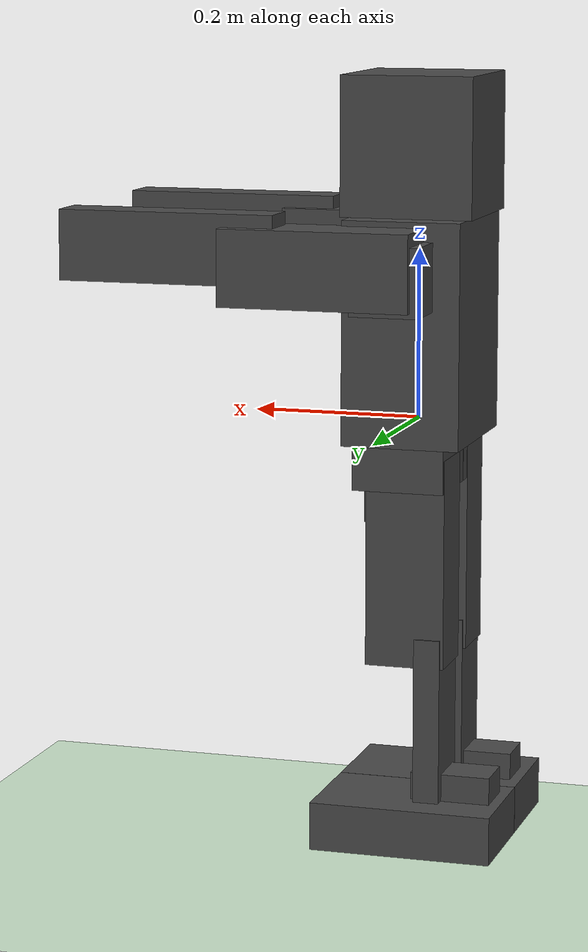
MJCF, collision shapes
<mujoco model="nugus scene">

  <include file="nugus.xml"/>

  <statistic center="0 0 0.55" extent="1.1"/>

  <visual>
    <headlight diffuse="0.6 0.6 0.6" ambient="0.3 0.3 0.3" specular="0 0 0"/>
    <rgba haze="0.871 0.616 0.4 0.5"/>
    <global azimuth="-130" elevation="-20"/>
  </visual>

   <asset>
       <texture builtin="gradient" height="100" rgb1="0.9 0.9 0.9" rgb2="0.549 0.251 0.0" type="skybox" width="100"/>
       <texture name="texplane" type="2d" builtin="checker" rgb1="0.5 0.5 0.5" rgb2="0.55 0.55 0.55" width="100" height="100"/>
       <material name="MatPlane" reflectance="0.0" texture="texplane" texrepeat="1 1" texuniform="true"/>
   </asset>

    <worldbody>
        <geom name="floor" friction="1 .1 .1" pos="0 0 -0.55" size="0 0 0.125" type="plane" material="MatPlane" condim="3" conaffinity="1" contype="1" group="2" rgba="0.8 0.9 0.8 1"/>
        <light cutoff="1000" diffuse="1.5 1.5 1.5" dir="-0 0 -1.3" directional="true" exponent="10" pos="0 0 10.3" specular=".1 .1 .1" castshadow="false"/>
    </worldbody>

</mujoco>

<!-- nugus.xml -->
<mujoco model="nugus">
<compiler angle="radian" meshdir=""/>

  <option iterations="3" ls_iterations="5" timestep=".002">
    <flag eulerdamp="disable"/>
  </option>

  <asset>
    <mesh name="torso_visual" file="torso_visual.stl"/>
    <mesh name="left_hip_yaw_visual" file="left_hip_yaw_visual.stl"/>
    <mesh name="left_hip_roll_visual" file="left_hip_roll_visual.stl"/>
    <mesh name="left_upper_leg_visual" file="left_upper_leg_visual.stl"/>
    <mesh name="left_lower_leg_visual" file="left_lower_leg_visual.stl"/>
    <mesh name="left_ankle_visual" file="left_ankle_visual.stl"/>
    <mesh name="left_foot_visual" file="left_foot_visual.stl"/>
    <mesh name="left_foot_base_visual" file="left_foot_base_visual.stl"/>
    <mesh name="right_hip_yaw_visual" file="right_hip_yaw_visual.stl"/>
    <mesh name="right_hip_roll_visual" file="right_hip_roll_visual.stl"/>
    <mesh name="right_upper_leg_visual" file="right_upper_leg_visual.stl"/>
    <mesh name="right_lower_leg_visual" file="right_lower_leg_visual.stl"/>
    <mesh name="right_ankle_visual" file="right_ankle_visual.stl"/>
    <mesh name="right_foot_visual" file="right_foot_visual.stl"/>
    <mesh name="right_foot_base_visual" file="right_foot_base_visual.stl"/>
    <mesh name="neck_visual" file="neck_visual.stl"/>
    <mesh name="head_visual" file="head_visual.stl"/>
    <mesh name="right_camera_visual" file="right_camera_visual.stl"/>
    <mesh name="left_shoulder_visual" file="left_shoulder_visual.stl"/>
    <mesh name="left_upper_arm_visual" file="left_upper_arm_visual.stl"/>
    <mesh name="left_lower_arm_visual" file="left_lower_arm_visual.stl"/>
    <mesh name="right_shoulder_visual" file="right_shoulder_visual.stl"/>
    <mesh name="right_upper_arm_visual" file="right_upper_arm_visual.stl"/>
    <mesh name="right_lower_arm_visual" file="right_lower_arm_visual.stl"/>
  </asset>

  <default>
    <joint damping="1.084" armature="0.045" frictionloss="0.03"/>
    <position kp="40.1" ctrlrange="-3.141592 3.141592" forcerange="-100 100"/>
    <geom contype="1" conaffinity="2" condim="3" solref="0.005 1"/>
    <site group="5" type="sphere"/>
    <default class="collision">
      <geom group="3"/>
      <default class="foot">
        <geom mass="0" type="box" contype="0" conaffinity="1" friction="1.0"/>
      </default>
    </default>
    <default class="visual">
      <geom contype="0" conaffinity="0" group="1" rgba="0.286275 0.286275 0.286275 1"/>
    </default>
    <default class="MX106">
      <joint armature="0.0266" damping="1.6548" frictionloss="0.10352"/>
      <position kp="56.052" forcerange="-11.086 11.086"/>
    </default>
    <default class="MX64">
      <joint armature="0.01195" damping="0.6782" frictionloss="0.09039"/>
      <position kp="31.1558" forcerange="-6.1621 6.1621"/>
    </default>
    <default class="XH540-W270">
      <joint armature="0.0266" damping="1.6548" frictionloss="0.10352"/>
      <position kp="56.052" forcerange="-11.086 11.086"/>
    </default>
  </default>

  <actuator>
    <position joint="left_hip_yaw" name="left_hip_yaw"/>
    <position joint="left_hip_roll" name="left_hip_roll"/>
    <position joint="left_hip_pitch" name="left_hip_pitch"/>
    <position joint="left_knee_pitch" name="left_knee_pitch"/>
    <position joint="left_ankle_pitch" name="left_ankle_pitch"/>
    <position joint="left_ankle_roll" name="left_ankle_roll"/>

    <position joint="right_hip_yaw" name="right_hip_yaw"/>
    <position joint="right_hip_roll" name="right_hip_roll"/>
    <position joint="right_hip_pitch" name="right_hip_pitch"/>
    <position joint="right_knee_pitch" name="right_knee_pitch"/>
    <position joint="right_ankle_pitch" name="right_ankle_pitch"/>
    <position joint="right_ankle_roll" name="right_ankle_roll"/>

    <position joint="neck_yaw" name="neck_yaw"/>
    <position joint="head_pitch" name="head_pitch"/>

    <position joint="left_shoulder_pitch" name="left_shoulder_pitch"/>
    <position joint="left_shoulder_roll" name="left_shoulder_roll"/>
    <position joint="left_elbow_pitch" name="left_elbow_pitch"/>
    <position joint="right_shoulder_pitch" name="right_shoulder_pitch"/>
    <position joint="right_shoulder_roll" name="right_shoulder_roll"/>
    <position joint="right_elbow_pitch" name="right_elbow_pitch"/>
  </actuator>

  <sensor>
    <framepos objtype="site" objname="imu" name="position"/>
    <gyro site="imu" name="gyro"/>
    <velocimeter site="imu" name="local_linvel"/>
    <accelerometer site="imu" name="accelerometer"/>
    <framezaxis objtype="site" objname="imu" name="upvector"/>
    <framexaxis objtype="site" objname="imu" name="forwardvector"/>
    <framelinvel objtype="site" objname="imu" name="global_linvel"/>
    <frameangvel objtype="site" objname="imu" name="global_angvel"/>
    <framequat objtype="site" objname="imu" name="orientation"/>

    <!-- Feet velocity sensors (global). -->
    <framelinvel objtype="site" objname="left_foot" name="left_foot_global_linvel"/>
    <framelinvel objtype="site" objname="right_foot" name="right_foot_global_linvel"/>

    <!-- Foot force sensors. -->
    <force site="left_foot" name="left_foot_force"/>
    <force site="right_foot" name="right_foot_force"/>

    <!-- Joint position sensors -->
    <jointpos joint="right_shoulder_pitch" name="right_shoulder_pitch_pos"/>
    <jointpos joint="left_shoulder_pitch" name="left_shoulder_pitch_pos"/>
    <jointpos joint="right_shoulder_roll" name="right_shoulder_roll_pos"/>
    <jointpos joint="left_shoulder_roll" name="left_shoulder_roll_pos"/>
    <jointpos joint="right_elbow_pitch" name="right_elbow_pitch_pos"/>
    <jointpos joint="left_elbow_pitch" name="left_elbow_pitch_pos"/>
    <jointpos joint="right_hip_yaw" name="right_hip_yaw_pos"/>
    <jointpos joint="left_hip_yaw" name="left_hip_yaw_pos"/>
    <jointpos joint="right_hip_roll" name="right_hip_roll_pos"/>
    <jointpos joint="left_hip_roll" name="left_hip_roll_pos"/>
    <jointpos joint="right_hip_pitch" name="right_hip_pitch_pos"/>
    <jointpos joint="left_hip_pitch" name="left_hip_pitch_pos"/>
    <jointpos joint="right_knee_pitch" name="right_knee_pitch_pos"/>
    <jointpos joint="left_knee_pitch" name="left_knee_pitch_pos"/>
    <jointpos joint="right_ankle_pitch" name="right_ankle_pitch_pos"/>
    <jointpos joint="left_ankle_pitch" name="left_ankle_pitch_pos"/>
    <jointpos joint="right_ankle_roll" name="right_ankle_roll_pos"/>
    <jointpos joint="left_ankle_roll" name="left_ankle_roll_pos"/>
    <jointpos joint="neck_yaw" name="neck_yaw_pos"/>
    <jointpos joint="head_pitch" name="head_pitch_pos"/>
  </sensor>

  <worldbody>
      <body name="torso">
      <inertial pos="-0.000971341 -7.63301e-05 0.0898493" quat="0.998034 0.00199235 0.0599357 0.0182343" mass="1.83264" diaginertia="0.0156368 0.0131516 0.00578565"/>
      <joint name="torso_free_joint" type="free"/>
      <site name='imu' size='0.01' pos='0 0 0'/>
      <camera name="track" pos="0.805 -1.105 0.2" xyaxes="0.814 0.580 0.000 -0.140 0.196 0.971" mode="trackcom"/>
      <geom type="mesh" contype="0" conaffinity="0" group="1" density="0" rgba="0.286275 0.286275 0.286275 1" mesh="torso_visual"/>
      <geom size="0.0697546 0.0949914 0.130902" pos="-0.00200103 -1.04979e-05 0.108568" type="box" rgba="0.286275 0.286275 0.286275 0"/>
      <body name="left_hip_yaw" pos="0 0.055 0" quat="1 0 0 0">
        <inertial pos="-0.0021828 -0.00894798 -0.0247563" quat="0.706738 0.705731 0.0325035 -0.0375176" mass="0.0594023" diaginertia="0.00011878 0.000103492 5.24089e-05"/>
        <joint name="left_hip_yaw" pos="0 0 0" axis="0 0 1" limited="true" range="-3.14159 3.14159" class="MX106"/>
        <geom type="mesh" contype="0" conaffinity="0" group="1" density="0" rgba="0.286275 0.286275 0.286275 1" mesh="left_hip_yaw_visual"/>
        <geom size="0.05425 0.0470128 0.03675" pos="0 -0.00723724 -0.03675" type="box" rgba="0.286275 0.286275 0.286275 0"/>
        <body name="left_hip_roll" pos="0.0221332 0 -0.0545" quat="0.707105 0 0.707108 0">
          <inertial pos="0.015733 -0.000686158 -0.0217073" quat="0.70707 0.00800622 -0.00800603 0.707053" mass="0.395953" diaginertia="0.000375935 0.000314298 0.000127658"/>
          <joint name="left_hip_roll" pos="0 0 0" axis="0 0 1" limited="true" range="-3.14159 3.14159"/>
          <geom type="mesh" contype="0" conaffinity="0" group="1" density="0" rgba="0.286275 0.286275 0.286275 1" mesh="left_hip_roll_visual"/>
          <geom size="0.0362265 0.02765 0.046925" pos="0.0211382 0.00135 -0.026825" type="box" rgba="0.286275 0.286275 0.286275 0"/>
          <body name="left_upper_leg" pos="0 0 0" quat="0.707105 -0.707108 0 0">
            <inertial pos="0.144296 0.0401097 0.000258488" quat="0.48018 0.474915 0.52246 0.520498" mass="0.313357" diaginertia="0.00167304 0.00160068 0.000213115"/>
            <joint name="left_hip_pitch" pos="0 0 0" axis="0 0 1" limited="true" range="-3.14159 3.14159"/>
            <geom type="mesh" contype="0" conaffinity="0" group="1" density="0" rgba="0.286275 0.286275 0.286275 1" mesh="left_upper_leg_visual"/>
            <geom size="0.123135 0.0467353 0.0365" pos="0.103064 0.0303674 0" type="box" rgba="0.286275 0.286275 0.286275 0"/>
            <body name="left_lower_leg" pos="0.206046 0.0569501 0" quat="1 0 0 0">
              <inertial pos="0.1001 0.00388186 -1.61259e-08" quat="0.500001 0.500001 0.499999 0.499999" mass="0.0893011" diaginertia="0.000408951 0.0003363 9.01254e-05"/>
              <joint name="left_knee_pitch" pos="0 0 0" axis="0 0 1" limited="true" range="-3.14159 3.14159" class="XH540-W270"/>
              <geom type="mesh" contype="0" conaffinity="0" group="1" density="0" rgba="0.286275 0.286275 0.286275 1" mesh="left_lower_leg_visual"/>
              <geom size="0.114601 0.0155 0.039" pos="0.100101 0.001 0" type="box" rgba="0.286275 0.286275 0.286275 0"/>
              <body name="left_ankle" pos="0.200203 0 0" quat="1 0 0 0">
                <inertial pos="-0.015733 0.0219762 0.000512596" quat="0.508721 0.491668 -0.491137 0.508184" mass="0.329993" diaginertia="0.000265803 0.000265762 0.000157721"/>
                <joint name="left_ankle_pitch" pos="0 0 0" axis="0 0 1" limited="true" range="-3.14159 3.14159"/>
                <geom type="mesh" contype="0" conaffinity="0" group="1" density="0" rgba="0.286275 0.286275 0.286275 1" mesh="left_ankle_visual"/>
                <geom size="0.0331382 0.047194 0.02765" pos="-0.01805 0.027094 -0.00166756" type="box" rgba="0.286275 0.286275 0.286275 0"/>
                <body name="left_foot" pos="0 0 0" quat="0.707105 0.707108 0 0">
                  <inertial pos="0.0248226 0.00798542 0.033284" quat="0.99979 -0.0089131 -9.26048e-05 -0.0184639" mass="0.245581" diaginertia="0.00134758 0.00108371 0.00033179"/>
                  <joint name="left_ankle_roll" pos="0 0 0" axis="0 0 1" limited="true" range="-3.14159 3.14159"/>
                  <geom type="mesh" contype="0" conaffinity="0" group="1" density="0" rgba="0.286275 0.286275 0.286275 1" mesh="left_foot_visual"/>
                  <geom size="0.0284933 0.0657897 0.107911" pos="0.00950672 0.0109447 0.0211599" type="box" rgba="0.286275 0.286275 0.286275 0"/>
                  <geom pos="0.038 0 0" quat="0.707105 0 -0.707108 0" type="mesh" contype="0" conaffinity="0" group="1" density="0" rgba="0.615686 0.811765 0.929412 1" mesh="left_foot_base_visual"/>
                  <geom name="l_foot1" class="foot" pos="0.02 0.01 0.02" size="0.02 0.06 0.105"/>
                  <site name="left_foot" rgba="1 0 0 1" pos="0.02 0 0"/>
                </body>
              </body>
            </body>
          </body>
        </body>
      </body>
      <body name="right_hip_yaw" pos="0 -0.055 0" quat="1 0 0 0">
        <inertial pos="-0.00218277 0.0089479 -0.0247564" quat="0.705733 0.706736 0.0375273 -0.0325114" mass="0.0594022" diaginertia="0.000118779 0.000103492 5.24082e-05"/>
        <joint name="right_hip_yaw" pos="0 0 0" axis="0 0 1" limited="true" range="-3.14159 3.14159" class="MX106"/>
        <geom type="mesh" contype="0" conaffinity="0" group="1" density="0" rgba="0.286275 0.286275 0.286275 1" mesh="right_hip_yaw_visual"/>
        <geom size="0.05425 0.0470128 0.03675" pos="0 0.00723724 -0.03675" type="box" rgba="0.286275 0.286275 0.286275 0"/>
        <body name="right_hip_roll" pos="0.0221332 0 -0.0545" quat="0.707105 0 0.707108 0">
          <inertial pos="0.015733 -0.000232251 -0.0218286" quat="0.707049 0.00279235 -0.00279276 0.707153" mass="0.395953" diaginertia="0.000378041 0.000316367 0.000127621"/>
          <joint name="right_hip_roll" pos="0 0 0" axis="0 0 1" limited="true" range="-3.14159 3.14159"/>
          <geom type="mesh" contype="0" conaffinity="0" group="1" density="0" rgba="0.286275 0.286275 0.286275 1" mesh="right_hip_roll_visual"/>
          <geom size="0.0331382 0.02765 0.04705" pos="0.01805 -0.00315 -0.02695" type="box" rgba="0.286275 0.286275 0.286275 0"/>
          <body name="right_upper_leg" pos="0 0 0" quat="0.707105 -0.707108 0 0">
            <inertial pos="0.144343 0.0400917 -0.000278506" quat="0.47021 0.473824 0.526501 0.526488" mass="0.313809" diaginertia="0.00167983 0.00160132 0.000207139"/>
            <joint name="right_hip_pitch" pos="0 0 0" axis="0 0 1" limited="true" range="-3.14159 3.14159"/>
            <geom type="mesh" contype="0" conaffinity="0" group="1" density="0" rgba="0.286275 0.286275 0.286275 1" mesh="right_upper_leg_visual"/>
            <geom size="0.123135 0.0467353 0.0365" pos="0.103064 0.0303674 -1.86265e-09" type="box" rgba="0.286275 0.286275 0.286275 0"/>
            <body name="right_lower_leg" pos="0.206046 0.0569501 0" quat="1 0 0 0">
              <inertial pos="0.100103 0.00388186 1.61259e-08" quat="0.499999 0.499999 0.500001 0.500001" mass="0.0893011" diaginertia="0.000408951 0.0003363 9.01254e-05"/>
              <joint name="right_knee_pitch" pos="0 0 0" axis="0 0 1" limited="true" range="-3.14159 3.14159" class="XH540-W270"/>
              <geom type="mesh" contype="0" conaffinity="0" group="1" density="0" rgba="0.286275 0.286275 0.286275 1" mesh="right_lower_leg_visual"/>
              <geom size="0.114601 0.0155 0.039" pos="0.100101 0.001 0" type="box" rgba="0.286275 0.286275 0.286275 0"/>
              <body name="right_ankle" pos="0.200203 0 0" quat="1 0 0 0">
                <inertial pos="-0.015733 0.0218226 0.000508968" quat="0.51022 0.492773 -0.489643 0.507051" mass="0.329993" diaginertia="0.00026369 0.000263648 0.000157719"/>
                <joint name="right_ankle_pitch" pos="0 0 0" axis="0 0 1" limited="false"/>
                <geom type="mesh" contype="0" conaffinity="0" group="1" density="0" rgba="0.286275 0.286275 0.286275 1" mesh="right_ankle_visual"/>
                <geom size="0.0328441 0.047044 0.02765" pos="-0.0177559 0.026944 -0.00166756" type="box" rgba="0.286275 0.286275 0.286275 0"/>
                <body name="right_foot" pos="0 0 0" quat="0.707105 0.707108 0 0">
                  <inertial pos="0.024823 -0.00798676 0.0332808" quat="0.99979 0.0089119 -9.00788e-05 0.0184638" mass="0.245567" diaginertia="0.00134748 0.00108364 0.000331758"/>
                  <joint name="right_ankle_roll" pos="0 0 0" axis="0 0 1" limited="true" range="-3.14159 3.14159"/>
                  <geom type="mesh" contype="0" conaffinity="0" group="1" density="0" rgba="0.286275 0.286275 0.286275 1" mesh="right_foot_visual"/>
                  <geom size="0.0284933 0.0657897 0.107911" pos="0.00950672 -0.0109447 0.0211599" type="box" rgba="0.286275 0.286275 0.286275 0"/>
                  <geom pos="0.038 0 0" quat="0.707105 0 -0.707108 0" type="mesh" contype="0" conaffinity="0" group="1" density="0" rgba="0.615686 0.811765 0.929412 1" mesh="right_foot_base_visual"/>
                  <geom name="r_foot1" class="foot" pos="0.02 -0.01 0.02" size="0.02 0.06 0.105"/>
                  <site name="right_foot" rgba="1 0 0 1" pos="0.02 0 0"/>
                </body>
              </body>
            </body>
          </body>
        </body>
      </body>
      <body name="neck" pos="-0.008 0 0.20825" quat="1.32679e-06 0 0 -1">
        <inertial pos="-0.000244686 -0.000118134 0.0329091" quat="0.998443 0.0557737 1.07166e-07 -1.91845e-06" mass="0.165011" diaginertia="6.78379e-05 5.68579e-05 3.82813e-05"/>
        <joint name="neck_yaw" pos="-0.008 0 0.20825" axis="0 0 1" limited="true" range="-3.14159 3.14159" class="MX64"/>
        <geom type="mesh" contype="0" conaffinity="0" group="1" density="0" rgba="0.286275 0.286275 0.286275 1" mesh="neck_visual"/>
        <geom size="0.0201 0.025 0.0314176" pos="-0.000244711 -0.00275529 0.0306824" type="box" rgba="0.286275 0.286275 0.286275 0"/>
        <body name="head" pos="-0.00024471 -0.000255294 0.0481" quat="0.499998 0.5 0.5 -0.500002">
          <inertial pos="-0.0665563 -0.0103216 -0.000100617" quat="0.999969 -0.000336797 -0.00449046 0.00648687" mass="0.473503" diaginertia="0.00196866 0.00145321 0.00107438"/>
          <joint name="head_pitch" pos="0 0 0" axis="0 0 1" limited="true" range="-3.14159 3.14159" class="MX64"/>
          <geom type="mesh" contype="0" conaffinity="0" group="1" density="0" rgba="0.286275 0.286275 0.286275 1" mesh="head_visual"/>
          <geom size="0.0811188 0.0778217 0.0788984" pos="-0.0659288 -0.00433207 -0.000205018" type="box" rgba="0.286275 0.286275 0.286275 0"/>
          <geom pos="-0.0648803 -0.0699522 -0.034205" quat="0.508649 0.508651 -0.491199 -0.491197" type="mesh" contype="0" conaffinity="0" group="1" density="0" rgba="0.615686 0.811765 0.929412 1" mesh="right_camera_visual"/>
          <geom size="5e-06 5.08174e-06 5e-06" pos="-0.0648853 -0.0699524 -0.034205" quat="0.508649 0.508651 -0.491199 -0.491197" type="box" rgba="0.615686 0.811765 0.929412 1"/>
          <camera name="egocentric" pos="0.01425 -0.019 0.04975" fovy="43.3" mode="fixed" euler="0.0 -1.570796 -1.570796"/>
        </body>
      </body>
      <body name="left_shoulder" pos="0 0.077 0.17725" quat="0.499998 -0.5 0.5 0.500002">
        <inertial pos="-3.61374e-05 -0.00254925 0.0287427" quat="0.618495 0.346197 0.615355 0.344891" mass="0.0845502" diaginertia="9.98768e-05 9.09162e-05 7.30289e-05"/>
        <joint name="left_shoulder_pitch" pos="0 0.0106 0.1616" axis="0 0 1" limited="true" range="-3.14159 3.14159" class="MX64"/>
        <geom type="mesh" contype="0" conaffinity="0" group="1" density="0" rgba="0.286275 0.286275 0.286275 1" mesh="left_shoulder_visual"/>
        <geom size="0.04 0.040721 0.0396866" pos="0 -0.000721047 0.0396866" type="box" rgba="0.286275 0.286275 0.286275 0"/>
        <body name="left_upper_arm" pos="0 -0.0100012 0.0479124" quat="0.499998 0.5 -0.500002 -0.5">
          <inertial pos="0.045902 0.000372495 9.27204e-06" quat="0.346504 0.576301 -0.375287 0.637943" mass="0.29923" diaginertia="0.00098868 0.000637586 0.000573833"/>
          <joint name="left_shoulder_roll" pos="0 0 0" axis="0 0 1" limited="true" range="-3.14159 3.14159" class="MX64"/>
          <geom type="mesh" contype="0" conaffinity="0" group="1" density="0" rgba="0.286275 0.286275 0.286275 1" mesh="left_upper_arm_visual"/>
          <geom size="0.112419 0.0395114 0.0447976" pos="0.0730323 -1.39214e-05 0.0106963" type="box" rgba="0.286275 0.286275 0.286275 0"/>
          <body name="left_lower_arm" pos="0.1575 -5.57465e-05 0.02695" quat="0.499998 -0.5 0.5 0.500002">
            <inertial pos="-0.000605553 -0.0509966 6.9181e-05" quat="0.568214 0.433479 -0.53189 0.454226" mass="0.287325" diaginertia="0.00115275 0.000789823 0.000530221"/>
            <joint name="left_elbow_pitch" pos="0 0 0" axis="0 0 1" limited="true" range="-3.14159 3.14159" class="MX64"/>
            <geom type="mesh" contype="0" conaffinity="0" group="1" density="0" rgba="0.286275 0.286275 0.286275 1" mesh="left_lower_arm_visual"/>
            <geom size="0.041286 0.129149 0.0254608" pos="-0.00247871 -0.0956493 -0.00252151" type="box" rgba="0.286275 0.286275 0.286275 0"/>
            <site name="left_hand" rgba="1 0 0 1" pos="-0.02 -0.14 0"/>
          </body>
        </body>
      </body>
      <body name="right_shoulder" pos="0 -0.077 0.17725" quat="0.499998 -0.5 0.5 0.500002">
        <inertial pos="-3.46247e-05 -0.00254925 -0.0287427" quat="0.346201 0.618498 0.344878 0.615357" mass="0.0845501" diaginertia="9.98771e-05 9.09162e-05 7.3029e-05"/>
        <joint name="right_shoulder_pitch" pos="0 -0.0106 0.1616" axis="0 0 1" limited="true" range="-3.14159 3.14159" class="MX64"/>
        <geom type="mesh" contype="0" conaffinity="0" group="1" density="0" rgba="0.286275 0.286275 0.286275 1" mesh="right_shoulder_visual"/>
        <geom size="0.04 0.0407336 0.0396809" pos="0 -0.000733595 -0.0396809" type="box" rgba="0.286275 0.286275 0.286275 0"/>
        <body name="right_upper_arm" pos="0 -0.0100012 -0.0479124" quat="0.499998 0.5 -0.500002 -0.5">
          <inertial pos="0.0458986 -0.000371241 0.000118834" quat="0.327762 0.587042 -0.375964 0.637656" mass="0.299218" diaginertia="0.000988599 0.000640993 0.000570263"/>
          <joint name="right_shoulder_roll" pos="0 0 0" axis="0 0 1" limited="true" range="-3.14159 3.14159" class="MX64"/>
          <geom type="mesh" contype="0" conaffinity="0" group="1" density="0" rgba="0.286275 0.286275 0.286275 1" mesh="right_upper_arm_visual"/>
          <geom size="0.112415 0.0395114 0.0447976" pos="0.0730282 1.39214e-05 0.0106963" type="box" rgba="0.286275 0.286275 0.286275 0"/>
          <body name="right_lower_arm" pos="0.1575 5.57465e-05 0.02695" quat="0.499998 -0.5 0.5 0.500002">
            <inertial pos="-0.00060488 -0.0510002 -6.85101e-05" quat="0.456626 0.549865 -0.476171 0.512252" mass="0.28735" diaginertia="0.00115298 0.000782489 0.000537795"/>
            <joint name="right_elbow_pitch" pos="0 0 0" axis="0 0 1" limited="true" range="-3.14159 3.14159" class="MX64"/>
            <geom type="mesh" contype="0" conaffinity="0" group="1" density="0" rgba="0.286275 0.286275 0.286275 1" mesh="right_lower_arm_visual"/>
            <geom size="0.041286 0.129159 0.0254784" pos="-0.00247871 -0.0956591 0.0025391" type="box" rgba="0.286275 0.286275 0.286275 0"/>
            <site name="right_hand" rgba="1 0 0 1" pos="-0.02 -0.14 0"/>
          </body>
        </body>
      </body>
    </body>
  </worldbody>

  <contact>
    <exclude body1="left_hip_yaw" body2="left_upper_leg"/>
    <exclude body1="right_hip_yaw" body2="right_upper_leg"/>
  </contact>

  <keyframe>
    <key name="stand_bent_knees"
      qpos="
        0.00000e+00  0.00000e+00  4.73774e-01  9.94428e-01  1.07808e-03
        1.04931e-01 -1.00319e-02  3.39000e-02  1.63000e-01 -9.04000e-01
        1.20000e+00 -5.10000e-01 -1.66000e-01 -3.29000e-02 -1.62000e-01
      -9.04000e-01  1.20000e+00 -5.08000e-01  1.67000e-01 -2.22000e-08
        6.45000e-05  1.71000e+00  1.97000e-01 -7.13000e-01  1.71000e+00
      -1.97000e-01 -7.18000e-01
      "
    />
  </keyframe>
</mujoco>
